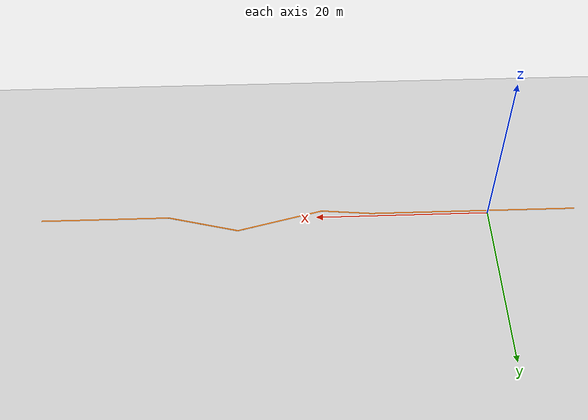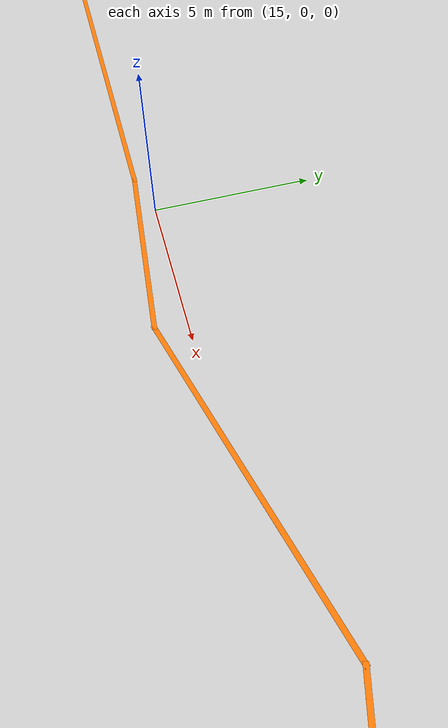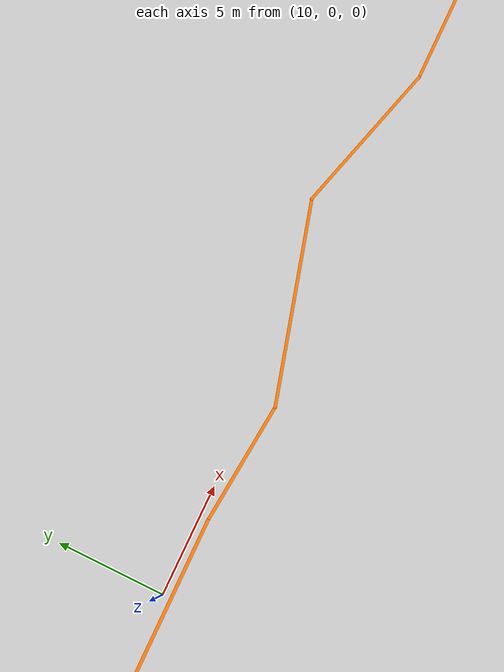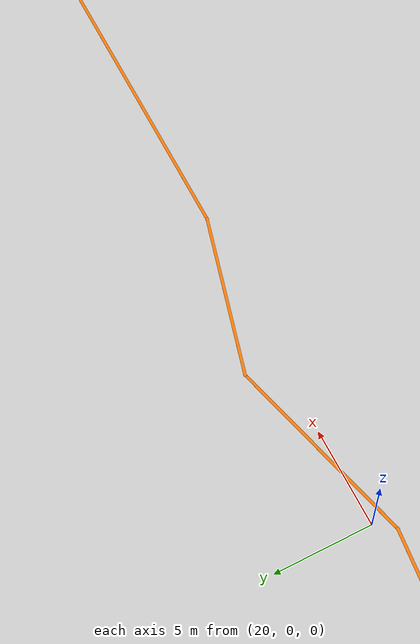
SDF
<sdf version="1.7">
 <world name="default">
  <light name="sun" type="directional">
   <pose>0 0 10 0 -0 0</pose>
   <diffuse>0.8 0.8 0.8 1</diffuse>
   <specular>0.2 0.2 0.2 1</specular>
   <attenuation>
    <range>1000</range>
    <constant>0.9</constant>
    <linear>0.01</linear>
    <quadratic>0.001</quadratic>
   </attenuation>
   <direction>-0.5 0.1 -0.9</direction>
   <spot><inner_angle>0</inner_angle><outer_angle>0</outer_angle><falloff>0</falloff></spot>
  </light>
  <model name="ground_plane">
   <static>1</static>
   <link name="link">
    <collision name="collision">
     <geometry><plane><normal>0 0 1</normal><size>100 100</size></plane></geometry>
     <surface><friction><ode><mu>100</mu><mu2>50</mu2></ode></friction></surface>
    </collision>
    <visual name="visual">
     <cast_shadows>0</cast_shadows>
     <geometry><plane><normal>0 0 1</normal><size>100 100</size></plane></geometry>
     <material>
      <script><uri>file://media/materials/scripts/gazebo.material</uri><name>Gazebo/Grey</name></script>
     </material>
    </visual>
   </link>
  </model>
  <gravity>0 0 -9.8</gravity>
  <magnetic_field>6e-06 2.3e-05 -4.2e-05</magnetic_field>
  <atmosphere type="adiabatic"/>
  <physics type="ode">
   <max_step_size>0.001</max_step_size>
   <real_time_factor>1</real_time_factor>
   <real_time_update_rate>1000</real_time_update_rate>
  </physics>
  <scene><ambient>0.4 0.4 0.4 1</ambient><background>0.7 0.7 0.7 1</background><shadows>1</shadows></scene>
  <audio><device>default</device></audio>
  <spherical_coordinates>
   <surface_model>EARTH_WGS84</surface_model>
   <latitude_deg>0</latitude_deg>
   <longitude_deg>0</longitude_deg>
   <elevation>0</elevation>
   <heading_deg>0</heading_deg>
  </spherical_coordinates>
  <model name="line_world">
   <pose>20.7517 0.362837 0 0 -0 0</pose>
   <link name="Wall_0">
    <collision name="Wall_0_Collision">
     <geometry><box><size>23.935 0.15 0.001</size></box></geometry>
     <pose>0 0 0.0005 0 -0 0</pose>
    </collision>
    <visual name="Wall_0_Visual">
     <pose>0 0 0.0005 0 -0 0</pose>
     <geometry><box><size>23.935 0.15 0.001</size></box></geometry>
     <material>
      <script><uri>file://media/materials/scripts/gazebo.material</uri><name>Gazebo/Grey</name></script>
      <ambient>0.996078 0.47451 0.0196078 1</ambient>
     </material>
     <meta><layer>0</layer></meta>
    </visual>
    <pose>-19.082 -0.741 0 0 -0 0</pose>
   </link>
   <link name="Wall_2">
    <collision name="Wall_2_Collision">
     <geometry><box><size>5.92001 0.15 0.001</size></box></geometry>
     <pose>0 0 0.0005 0 -0 0</pose>
    </collision>
    <visual name="Wall_2_Visual">
     <pose>0 0 0.0005 0 -0 0</pose>
     <geometry><box><size>5.92001 0.15 0.001</size></box></geometry>
     <material>
      <script><uri>file://media/materials/scripts/gazebo.material</uri><name>Gazebo/Grey</name></script>
      <ambient>0.996078 0.47451 0.0196078 1</ambient>
     </material>
     <meta><layer>0</layer></meta>
    </visual>
    <pose>-4.3185 -1.024 0 0 -0 3.04334</pose>
   </link>
   <link name="Wall_4">
    <collision name="Wall_4_Collision">
     <geometry><box><size>10.25 0.15 0.001</size></box></geometry>
     <pose>0 0 0.0005 0 -0 0</pose>
    </collision>
    <visual name="Wall_4_Visual">
     <pose>0 0 0.0005 0 -0 0</pose>
     <geometry><box><size>10.25 0.15 0.001</size></box></geometry>
     <material>
      <script><uri>file://media/materials/scripts/gazebo.material</uri><name>Gazebo/Grey</name></script>
      <ambient>0.996078 0.47451 0.0196078 1</ambient>
     </material>
     <meta><layer>0</layer></meta>
    </visual>
    <pose>3.4305 -0 0 0 -0 0.261789</pose>
   </link>
   <link name="Wall_5">
    <collision name="Wall_5_Collision">
     <geometry><box><size>8.5 0.15 0.001</size></box></geometry>
     <pose>0 0 0.0005 0 -0 0</pose>
    </collision>
    <visual name="Wall_5_Visual">
     <pose>0 0 0.0005 0 -0 0</pose>
     <geometry><box><size>8.5 0.15 0.001</size></box></geometry>
     <material>
      <script><uri>file://media/materials/scripts/gazebo.material</uri><name>Gazebo/Grey</name></script>
      <ambient>0.996078 0.47451 0.0196078 1</ambient>
     </material>
     <meta><layer>0</layer></meta>
    </visual>
    <pose>12.3415 0.2265 0 0 -0 -0.261767</pose>
   </link>
   <link name="Wall_6">
    <collision name="Wall_6_Collision">
     <geometry><box><size>14.75 0.15 0.001</size></box></geometry>
     <pose>0 0 0.0005 0 -0 0</pose>
    </collision>
    <visual name="Wall_6_Visual">
     <pose>0 0 0.0005 0 -0 0</pose>
     <geometry><box><size>14.75 0.15 0.001</size></box></geometry>
     <material>
      <script><uri>file://media/materials/scripts/gazebo.material</uri><name>Gazebo/Grey</name></script>
      <ambient>0.996078 0.47451 0.0196078 1</ambient>
     </material>
     <meta><layer>0</layer></meta>
    </visual>
    <pose>23.6745 -0.854 0 0 -0 0</pose>
   </link>
   <static>1</static>
  </model>
 </world>
</sdf>
